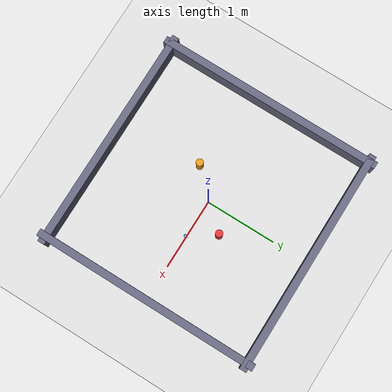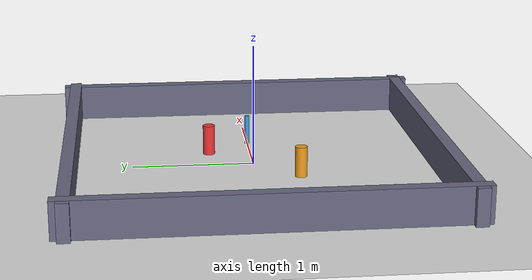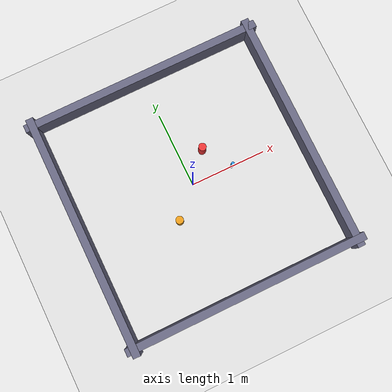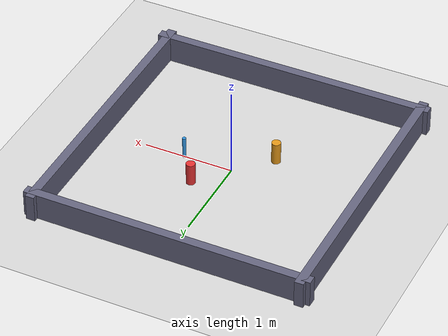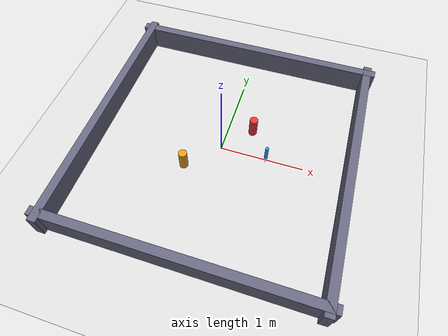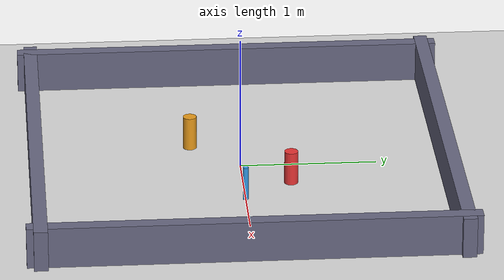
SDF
<?xml version="1.0" ?>
<sdf version="1.8">
  <world name="hybrid_obstacle_world">

    <!-- Physics -->
    <physics name="1ms" type="ignored">
      <max_step_size>0.001</max_step_size>
      <real_time_factor>1.0</real_time_factor>
    </physics>

    <!-- Plugins -->
    <plugin filename="libgz-sim-physics-system.so"
            name="gz::sim::systems::Physics"/>
    <plugin filename="libgz-sim-user-commands-system.so"
            name="gz::sim::systems::UserCommands"/>
    <plugin filename="libgz-sim-scene-broadcaster-system.so"
            name="gz::sim::systems::SceneBroadcaster"/>

    <!-- Sunlight -->
    <light type="directional" name="sun">
      <cast_shadows>true</cast_shadows>
      <pose>0 0 10 0 0 0</pose>
      <diffuse>0.9 0.9 0.9 1</diffuse>
      <specular>0.3 0.3 0.3 1</specular>
      <direction>-0.5 0.1 -0.9</direction>
    </light>

    <!-- Ground Plane -->
    <model name="ground_plane">
      <static>true</static>
      <link name="link">
        <collision name="collision">
          <geometry>
            <plane>
              <normal>0 0 1</normal>
              <size>10 10</size>
            </plane>
          </geometry>
        </collision>
        <visual name="visual">
          <geometry>
            <plane>
              <normal>0 0 1</normal>
              <size>10 10</size>
            </plane>
          </geometry>
          <material>
            <ambient>0.85 0.85 0.85 1</ambient>
            <diffuse>0.85 0.85 0.85 1</diffuse>
          </material>
        </visual>
      </link>
    </model>

    <!-- ═══════════════════════════════════════════
         BOUNDARY WALLS  (3m × 3m arena)
         ═══════════════════════════════════════════ -->

    <!-- North wall (y = +1.5) -->
    <model name="wall_north">
      <static>true</static>
      <pose>0 1.5 0.15 0 0 0</pose>
      <link name="link">
        <collision name="collision">
          <geometry><box><size>3.2 0.1 0.3</size></box></geometry>
        </collision>
        <visual name="visual">
          <geometry><box><size>3.2 0.1 0.3</size></box></geometry>
          <material>
            <ambient>0.4 0.4 0.5 1</ambient>
            <diffuse>0.4 0.4 0.5 1</diffuse>
          </material>
        </visual>
      </link>
    </model>

    <!-- South wall (y = -1.5) -->
    <model name="wall_south">
      <static>true</static>
      <pose>0 -1.5 0.15 0 0 0</pose>
      <link name="link">
        <collision name="collision">
          <geometry><box><size>3.2 0.1 0.3</size></box></geometry>
        </collision>
        <visual name="visual">
          <geometry><box><size>3.2 0.1 0.3</size></box></geometry>
          <material>
            <ambient>0.4 0.4 0.5 1</ambient>
            <diffuse>0.4 0.4 0.5 1</diffuse>
          </material>
        </visual>
      </link>
    </model>

    <!-- East wall (x = +1.5) -->
    <model name="wall_east">
      <static>true</static>
      <pose>1.5 0 0.15 0 0 0</pose>
      <link name="link">
        <collision name="collision">
          <geometry><box><size>0.1 3.2 0.3</size></box></geometry>
        </collision>
        <visual name="visual">
          <geometry><box><size>0.1 3.2 0.3</size></box></geometry>
          <material>
            <ambient>0.4 0.4 0.5 1</ambient>
            <diffuse>0.4 0.4 0.5 1</diffuse>
          </material>
        </visual>
      </link>
    </model>

    <!-- West wall (x = -1.5) -->
    <model name="wall_west">
      <static>true</static>
      <pose>-1.5 0 0.15 0 0 0</pose>
      <link name="link">
        <collision name="collision">
          <geometry><box><size>0.1 3.2 0.3</size></box></geometry>
        </collision>
        <visual name="visual">
          <geometry><box><size>0.1 3.2 0.3</size></box></geometry>
          <material>
            <ambient>0.4 0.4 0.5 1</ambient>
            <diffuse>0.4 0.4 0.5 1</diffuse>
          </material>
        </visual>
      </link>
    </model>

    <!-- ═══════════════════════════════════════════
         OBSTACLES NEAR Figure-8 (A=0.5m)
         ═══════════════════════════════════════════ -->

    <!-- Obstacle 1: Above right loop (red) -->
    <model name="obstacle_1">
      <static>true</static>
      <pose>0.30 0.35 0.125 0 0 0</pose>
      <link name="link">
        <collision name="collision">
          <geometry><cylinder><radius>0.05</radius><length>0.25</length></cylinder></geometry>
        </collision>
        <visual name="visual">
          <geometry><cylinder><radius>0.05</radius><length>0.25</length></cylinder></geometry>
          <material>
            <ambient>0.9 0.2 0.2 1</ambient>
            <diffuse>0.9 0.2 0.2 1</diffuse>
          </material>
        </visual>
      </link>
    </model>

    <!-- Obstacle 2: Below left loop (orange) -->
    <model name="obstacle_2">
      <static>true</static>
      <pose>-0.35 -0.35 0.125 0 0 0</pose>
      <link name="link">
        <collision name="collision">
          <geometry><cylinder><radius>0.05</radius><length>0.25</length></cylinder></geometry>
        </collision>
        <visual name="visual">
          <geometry><cylinder><radius>0.05</radius><length>0.25</length></cylinder></geometry>
          <material>
            <ambient>0.9 0.6 0.1 1</ambient>
            <diffuse>0.9 0.6 0.1 1</diffuse>
          </material>
        </visual>
      </link>
    </model>

    <!-- Obstacle 3: Right of crossing (blue) -->
    <model name="obstacle_3">
      <static>true</static>
      <pose>0.55 0.00 0.125 0 0 0</pose>
      <link name="link">
        <collision name="collision">
          <geometry><cylinder><radius>0.02</radius><length>0.25</length></cylinder></geometry>
        </collision>
        <visual name="visual">
          <geometry><cylinder><radius>0.02</radius><length>0.25</length></cylinder></geometry>
          <material>
            <ambient>0.2 0.6 0.9 1</ambient>
            <diffuse>0.2 0.6 0.9 1</diffuse>
          </material>
        </visual>
      </link>
    </model>

  </world>
</sdf>
